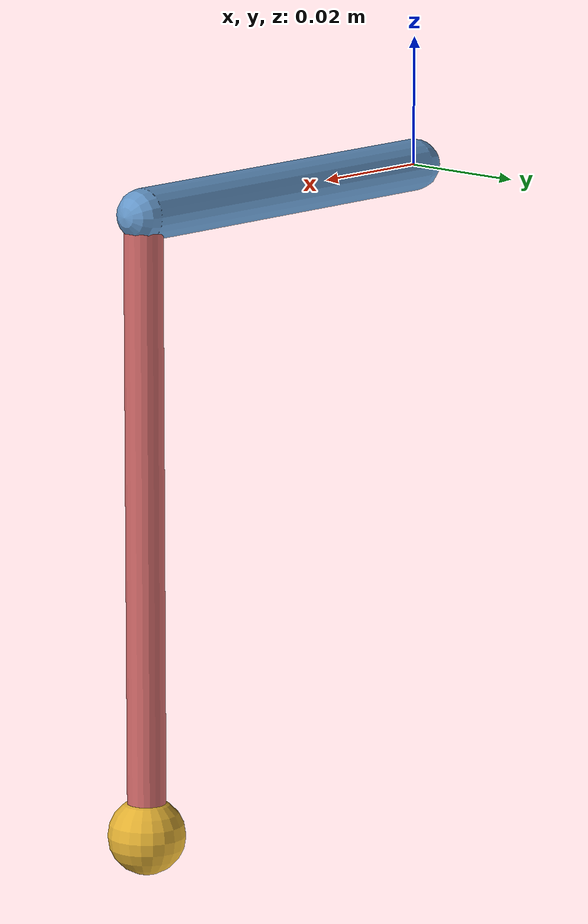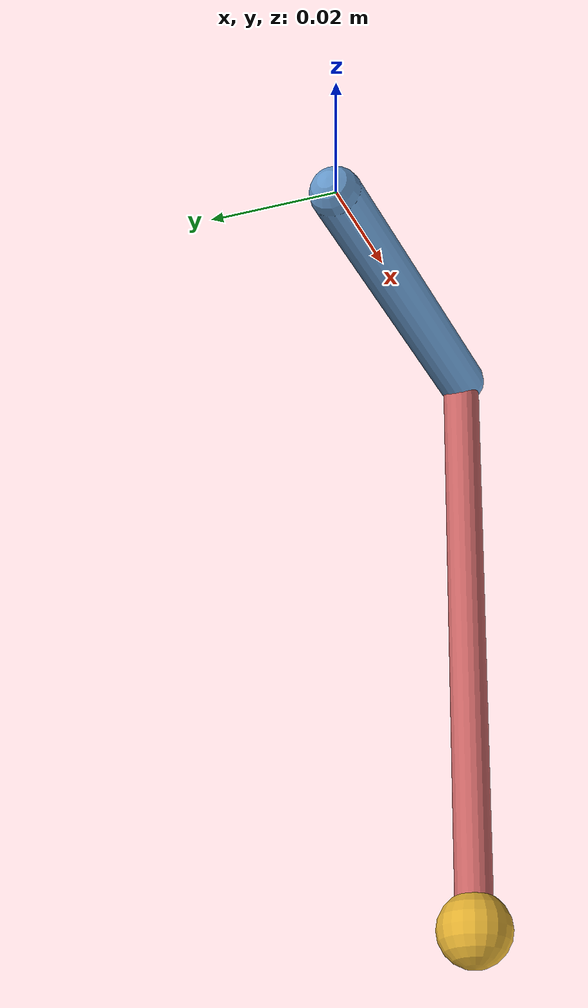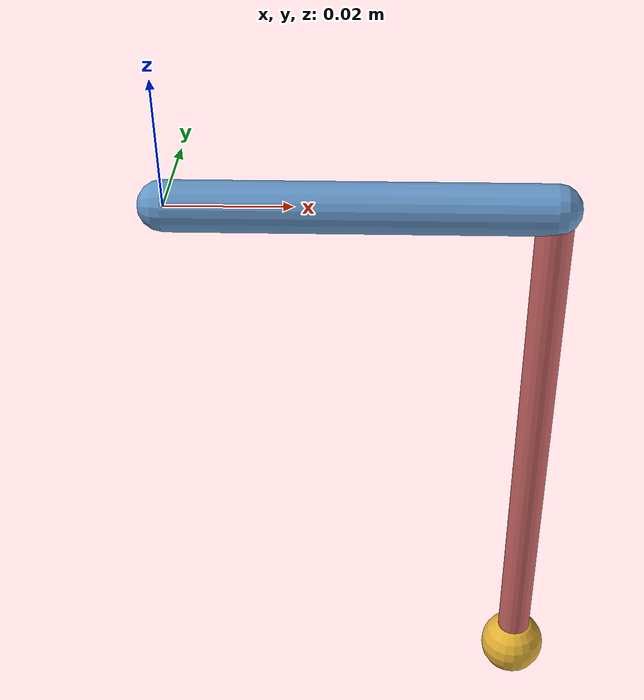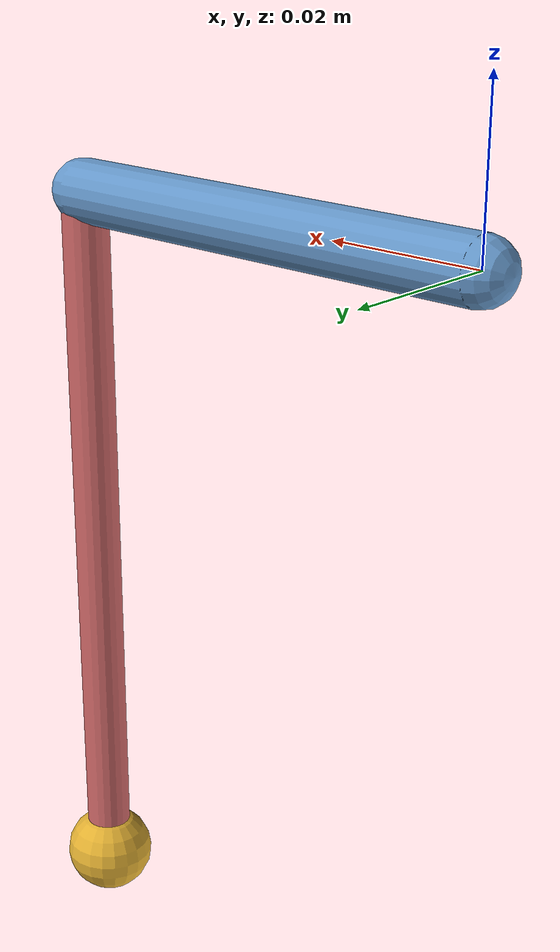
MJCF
<?xml version="1.0"?>
<mujoco model="rotary_inverted_pendulum">
  <option timestep="0.0005" gravity="0 0 -9.81" integrator="implicitfast" density="1.2" viscosity="1.8e-5"/>

  <default>
    <joint armature="0" damping="0"/>
    <geom contype="0" conaffinity="0" rgba="0.6 0.6 0.6 1"/>
  </default>

  <worldbody>
    <light diffuse="0.7 0.7 0.7" pos="0 0 1" dir="0 0 -1"/>

    <body name="arm" pos="0 0 0">
      <joint name="motor_joint" type="hinge" axis="0 0 1"
             range="-3.181661564992912 3.181661564992912" limited="true"
             damping="0.00001" frictionloss="0"/>
      <inertial pos="0.0398571 0 0" mass="0.0367867"
                diaginertia="1e-6 1.83441e-05 1.83441e-05"/>
      <geom name="arm_visual" type="capsule"
            fromto="0 0 0 0.06 0 0" size="0.004"
            rgba="0.4 0.6 0.8 1"/>

      <body name="pendulum" pos="0.06 0 0">
        <joint name="pendulum_joint" type="hinge" axis="1 0 0"
               damping="5.75086e-06"
               frictionloss="7.74722e-08"/>
        <inertial pos="0 0 -0.04788029571636855" mass="0.00903535"
                  diaginertia="6.3619e-06 6.3619e-06 1e-07"/>
        <geom name="pendulum_visual" type="capsule"
              fromto="0 0 0 0 0 -0.0957605914327371" size="0.003"
              rgba="0.8 0.4 0.4 1"/>
        <geom name="pendulum_tip" type="sphere" pos="0 0 -0.0957605914327371"
              size="0.006" rgba="0.9 0.7 0.2 1"/>
      </body>
    </body>
  </worldbody>

  <actuator>
    <position name="motor" joint="motor_joint"
              kp="100.0" kv="0.23356877426929817"
              ctrlrange="-3.181661564992912 3.181661564992912"/>
  </actuator>
</mujoco>
